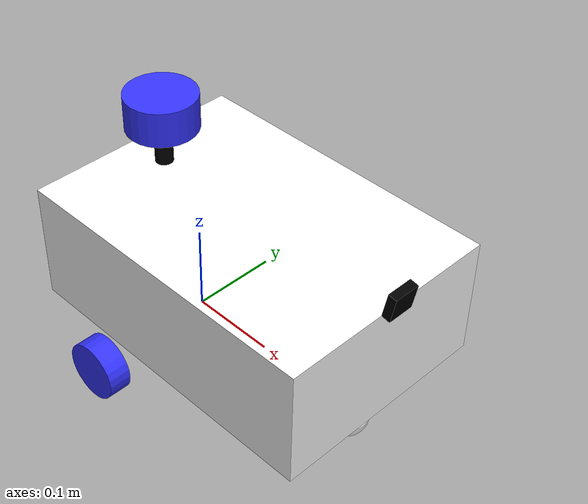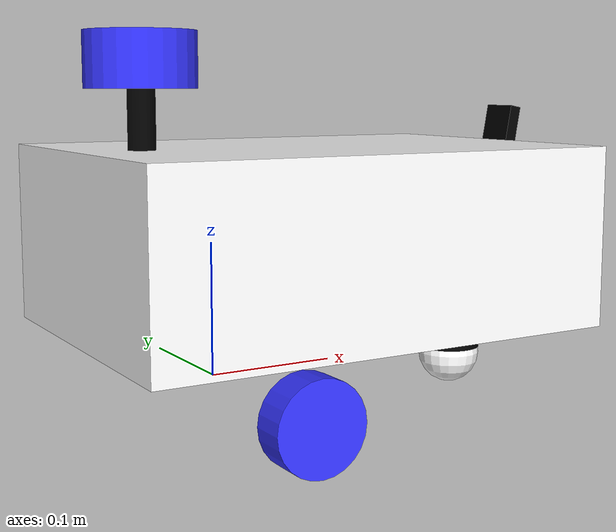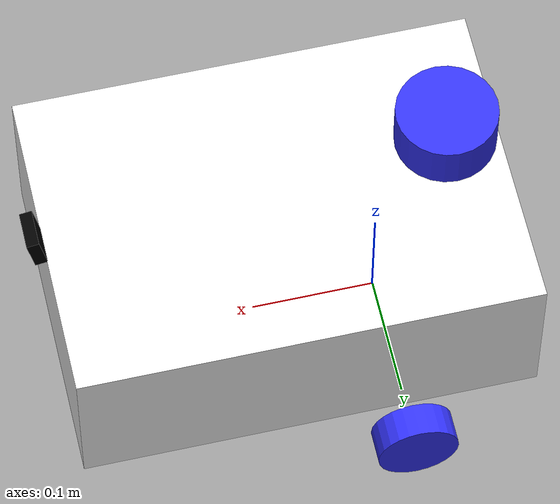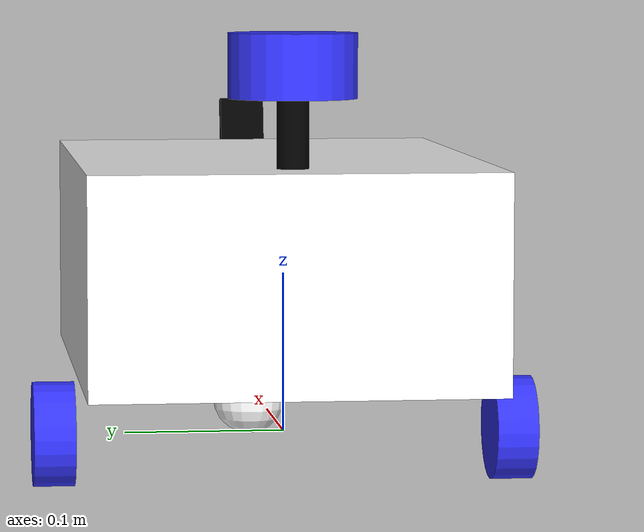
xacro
<?xml version="1.0"?>
<robot xmlns:xacro="http://www.ros.org/wiki/xacro" name="robot">

    <xacro:arg name="use_ros2_control" default="true" />
    <xacro:arg name="sim_mode" default="false" />

    <xacro:include filename="robot_core.xacro" />

    <xacro:if value="$(arg use_ros2_control)">
        <xacro:include filename="ros2_control.xacro" />
    </xacro:if>
    <xacro:unless value="$(arg use_ros2_control)">
        <xacro:include filename="gazebo_control.xacro" />
    </xacro:unless>

    <xacro:include filename="lidar.xacro" />
    <xacro:include filename="camera.xacro" />

</robot>

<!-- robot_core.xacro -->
<robot xmlns:xacro="http://www.ros.org/wiki/xacro">

     <xacro:include filename="inertial_macros.xacro" />

     <xacro:property name="chassis_length" value="0.368" />
     <xacro:property name="chassis_width" value="0.257" />
     <xacro:property name="chassis_height" value="0.137" />
     <xacro:property name="chassis_mass" value="2.1" />
     <!--robot_mass = [my_mass + robot_mass_unknown] - my_mass = 61.4 - 59.3 = 2.1kg-->
     <xacro:property name="wheel_radius" value="0.033" />
     <xacro:property name="wheel_thickness" value="0.026" />
     <xacro:property name="wheel_mass" value="0.038" />
     <xacro:property name="wheel_offset_x" value="0.103" />
     <xacro:property name="wheel_offset_y" value="0.145" />
     <xacro:property name="wheel_offset_z" value="-0.032" />
     <xacro:property name="caster_wheel_radius" value="0.025" />
     <xacro:property name="caster_wheel_mass" value="0.032" />
     <xacro:property name="caster_wheel_offset_x" value="0.323" />
     <xacro:property name="caster_wheel_offset_z" value="${wheel_offset_z - wheel_radius + caster_wheel_radius}" />

     <material name="white">
          <color rgba="1 1 1 1" />
     </material>

     <material name="orange">
          <color rgba="1 0.3 0.1 1" />
     </material>

     <material name="blue">
          <color rgba="0.2 0.2 1 1" />
     </material>

     <material name="black">
          <color rgba="0 0 0 1" />
     </material>

     <material name="red">
          <color rgba="1 0 0 1" />
     </material>

     <!-- BASE LINK -->

     <link name="base_link">

     </link>

     <!-- BASE FOOTPRINT LINK-->
     <joint name = "base_footprint_joint" type = "fixed">
          <parent link = "base_link"/>
          <child link = "base_footprint"/>
          <origin xyz = "0 0 0" rpy = "0 0 0"/>
     </joint>

     <link name = "base_footprint">
     </link>

     <!-- CHASSIS LINK -->

     <joint name="chassis_joint" type="fixed">
          <parent link="base_link" />
          <child link="chassis" />
          <origin xyz="${-wheel_offset_x} 0 ${-wheel_offset_z}" />
     </joint>

     <link name="chassis">
     <visual>
          <origin xyz="${chassis_length/2} 0 ${chassis_height/2}" />
          <geometry>
               <box size="${chassis_length} ${chassis_width} ${chassis_height}" />
          </geometry>
          <material name="white" />
     </visual>
     <collision>
          <origin xyz="${chassis_length/2} 0 ${chassis_height/2}" />
          <geometry>
               <box size="${chassis_length} ${chassis_width} ${chassis_height}" />
          </geometry>
     </collision>
     <xacro:inertial_box mass="0.5" x="${chassis_length}" y="${chassis_width}" z="${chassis_height}">
          <origin xyz="${chassis_length/2} 0 ${chassis_height/2}" rpy="0 0 0" />
     </xacro:inertial_box>
     </link>

     <gazebo reference="chassis">
          <material>Gazebo/White</material>
     </gazebo>

     <!-- LEFT WHEEL LINK -->

     <joint name="left_wheel_joint" type="continuous">
          <parent link="base_link" />
          <child link="left_wheel" />
          <origin xyz="0 ${wheel_offset_y} 0" rpy="-${pi/2} 0 0" />
          <axis xyz="0 0 1" />
     </joint>

     <link name="left_wheel">
     <visual>
          <geometry>
               <cylinder radius="${wheel_radius}" length="${wheel_thickness}" />
          </geometry>
          <material name="blue" />
     </visual>
     <collision>
          <geometry>
               <sphere radius="${wheel_radius}" />
          </geometry>
     </collision>
     <xacro:inertial_cylinder mass="${wheel_mass}" length="${wheel_thickness}" radius="${wheel_radius}">
          <origin xyz="0 0 0" rpy="0 0 0" />
     </xacro:inertial_cylinder>
     </link>

     <gazebo reference="left_wheel">
          <material>Gazebo/Blue</material>
     </gazebo>

     <!-- RIGHT WHEEL LINK -->

     <joint name="right_wheel_joint" type="continuous">
          <parent link="base_link" />
          <child link="right_wheel" />
          <origin xyz="0 ${-wheel_offset_y} 0" rpy="${pi/2} 0 0" />
          <axis xyz="0 0 -1" />
     </joint>

     <link name="right_wheel">
     <visual>
          <geometry>
               <cylinder radius="${wheel_radius}" length="${wheel_thickness}" />
          </geometry>
          <material name="blue" />
     </visual>
     <collision>
          <geometry>
               <sphere radius="${wheel_radius}" />
          </geometry>
     </collision>
     <xacro:inertial_cylinder mass="${wheel_mass}" length="${wheel_thickness}" radius="${wheel_radius}">
          <origin xyz="0 0 0" rpy="0 0 0" />
     </xacro:inertial_cylinder>
     </link>

     <gazebo reference="right_wheel">
          <material>Gazebo/Blue</material>
     </gazebo>

     <!-- CASTER WHEEL LINK -->

     <joint name="caster_wheel_joint" type="fixed">
          <parent link="chassis" />
          <child link="caster_wheel" />
          <origin xyz="${caster_wheel_offset_x} 0 ${caster_wheel_offset_z}" />
     </joint>

     <link name="caster_wheel">
     <visual>
          <geometry>
               <sphere radius="${caster_wheel_radius}" />
          </geometry>
          <material name="white" />
     </visual>
     <collision>
          <geometry>
               <sphere radius="${caster_wheel_radius}" />
          </geometry>
     </collision>
     <xacro:inertial_sphere mass="${caster_wheel_mass}" radius="${caster_wheel_radius}">
          <origin xyz="0 0 0" rpy="0 0 0" />
     </xacro:inertial_sphere>
     </link>

     <gazebo reference="caster_wheel">
          <material>Gazebo/White</material>
          <mu1 value="0.001" />
          <mu2 value="0.001" />
     </gazebo>

     <!--CASTER WHEEL SUPPORT LINK-->

     <joint name="caster_wheel_support_joint" type="fixed">
          <parent link="chassis" />
          <child link="caster_wheel_support" />
          <origin xyz="${caster_wheel_offset_x} 0 0" />
     </joint>

     <link name="caster_wheel_support">
     <visual>
          <geometry>
               <cylinder radius="${caster_wheel_radius}" length="0.07" />
          </geometry>
          <material name="black" />
     </visual>
     <collision>
          <geometry>
               <cylinder radius="${caster_wheel_radius}" length="0.07" />
          </geometry>
     </collision>
     <xacro:inertial_sphere mass="${caster_wheel_mass}" radius="${caster_wheel_radius}">
          <origin xyz="0 0 0" rpy="0 0 0" />
     </xacro:inertial_sphere>
     </link>

     <gazebo reference="caster_wheel_support">
          <material>Gazebo/Black</material>
     </gazebo>

     <!--LIDAR SUPPORT LINK-->

     <joint name="lidar_support_joint" type="fixed">
          <parent link="chassis" />
          <child link="lidar_support" />
          <origin xyz="0.05 0 0.15" />
     </joint>

     <link name="lidar_support">
     <visual>
          <geometry>
               <cylinder radius="0.01" length="0.07" />
          </geometry>
          <material name="black" />
     </visual>
     <collision>
          <geometry>
               <cylinder radius="${caster_wheel_radius}" length="0.07" />
          </geometry>
     </collision>
     <xacro:inertial_sphere mass="${caster_wheel_mass}" radius="${caster_wheel_radius}">
          <origin xyz="0 0 0" rpy="0 0 0" />
     </xacro:inertial_sphere>
     </link>

     <gazebo reference="lidar_support">
          <material>Gazebo/Black</material>
     </gazebo>

</robot>

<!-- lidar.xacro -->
<robot xmlns:xacro="http://www.ros.org/wiki/xacro"  name="robot">

    <joint name = "laser_joint" type = "fixed" >
        <parent link = "chassis" />
        <child link = "laser_frame" />
        <origin xyz = "0.05 0 0.2" rpy = "0 0 0" />
    </joint>

    <link name = "laser_frame" >
     <visual>
       <geometry>
         <cylinder radius = "0.04" length = "0.04" />
       </geometry>

       <material name = "blue" />
     </visual>

     <collision>
       <geometry>
         <cylinder radius = "0.04" length = "0.04" />
       </geometry>
     </collision>

     <!-- moment of inertia -->
     <xacro:inertial_cylinder mass = "0.1" length = "0.04" radius = "0.04" >
     <origin xyz = "0 0 0" rpy = "0 0 0" />
     </xacro:inertial_cylinder>

    </link>

    <gazebo reference="laser_frame">
        <material>Gazebo/Blue</material>

        <sensor name="laser" type="ray"> <!-- lidar sensor -->
            <pose> 0 0 0 0 0 0 </pose>   <!-- origin of sensor -->
            <visualize>false</visualize>  <!-- set to true to see rays-->
            <update_rate>10</update_rate>  <!-- in Hz -->
            <ray>
                <scan>
                    <horizontal>
                        <samples>360</samples>  <!-- 360 samples (360 degrees)-->
                        <min_angle>-3.14</min_angle>  <!-- in rads -180 degree min-->
                        <max_angle>3.14</max_angle>   <!-- in rads 180 degree max-->
                    </horizontal>
                </scan>
                <range>
                    <min>0.3</min> <!-- 0.3 meters min range -->
                    <max>12</max>  <!-- 12 meters max range -->
                </range>
            </ray>
            <!-- ROS plug-in for lidar -->
            <plugin name="laser_controller" filename="libgazebo_ros_ray_sensor.so">
                <ros>
                    <argument>~/out:=scan</argument>
                </ros>
                <output_type>sensor_msgs/LaserScan</output_type> <!-- ROS primitive message-->
                <frame_name>laser_frame</frame_name>
            </plugin>
        </sensor>
    </gazebo>

</robot>

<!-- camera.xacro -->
<robot xmlns:xacro="http://www.ros.org/wiki/xacro"  name="robot">

    <joint name = "camera_joint" type = "fixed" >
        <parent link = "chassis" />
        <child link = "camera_link" />
        <origin xyz = "0.375 0 0.15" rpy = "0 0.18 0" />
    </joint>

    <link name = "camera_link" >
     <visual>
       <geometry>
         <box size = "0.010 0.03 0.03" />
       </geometry>
       <material name = "black" />
     </visual>
    </link>

     <joint name = "camera_optical_joint" type = "fixed" >
        <parent link = "camera_link" />
        <child link = "camera_link_optical" />
        <origin xyz = "0 0 0" rpy = "${-pi/2} 0 ${-pi/2}" /> <!-- ROS Body standard to Image standard-->
    </joint>

    <link name = "camera_link_optical" >

    </link>

    <gazebo reference="camera_link">
        <material>Gazebo/Black</material>

        <sensor name="camera" type="camera"> <!-- lidar sensor -->
            <pose> 0 0 0 0 0 0 </pose>   <!-- origin of sensor -->
            <visualize>true</visualize>
            <update_rate>10</update_rate>  <!-- in Hz -->
            <camera>
              <horizontal_fov>1.089</horizontal_fov>  <!-- hortizontal field of view-->
              <image>
                <format>R8g8b8</format>
                <width>640</width>
                <height>480</height>
              </image>
              <clip>
                <near>0.05</near> <!-- min range -->
                <far>8.0</far> <!-- max range -->
              </clip>
            </camera>

            <!-- ROS plug-in for lidar -->
            <plugin name="camera_controller" filename="libgazebo_ros_camera.so">
                <frame_name>camera_link_optical</frame_name>
            </plugin>
        </sensor>
    </gazebo>

</robot>
